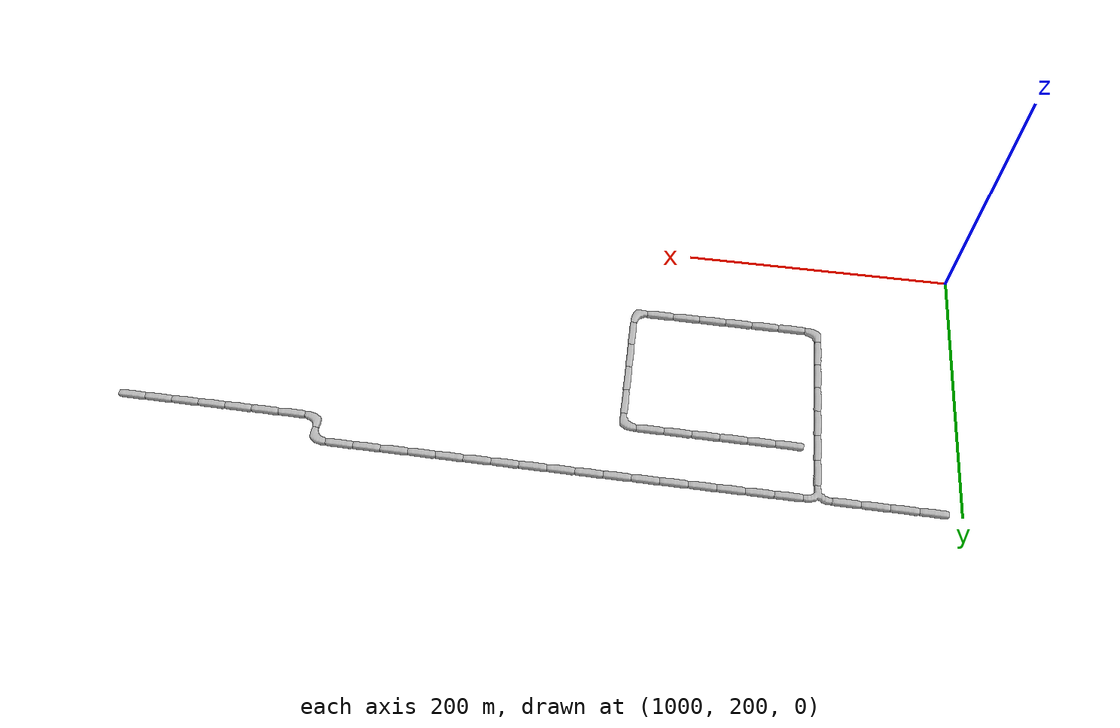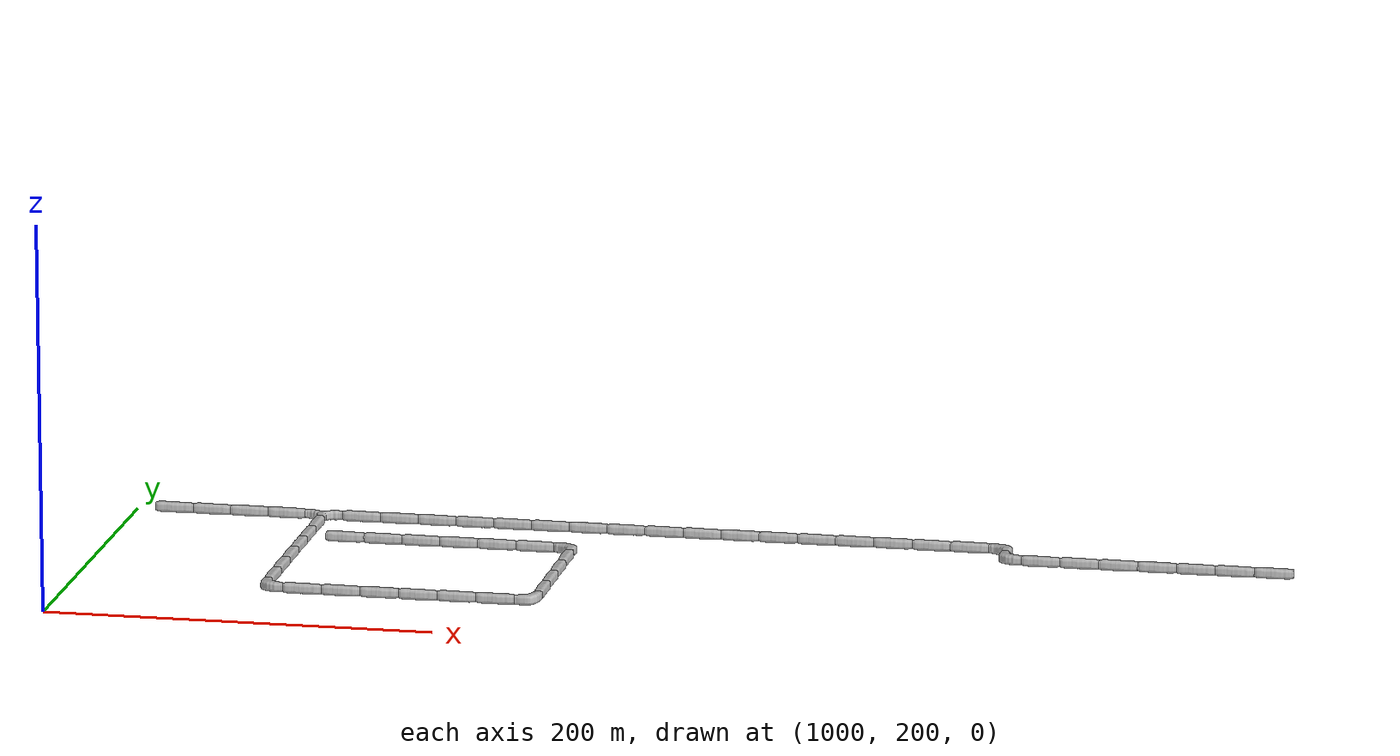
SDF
<sdf version="1.6">
 <world name="cave_32000_32">
  <include>
   <static>true</static>
   <name>cave_80_19</name>
   <pose>1600 380 0 0 0 1.5707963267948966</pose>
   <uri>model://cave_straight_20m</uri>
  </include>
  <include>
   <static>true</static>
   <name>cave_79_19</name>
   <pose>1580 380 0 0 0 1.5707963267948966</pose>
   <uri>model://cave_straight_20m</uri>
  </include>
  <include>
   <static>true</static>
   <name>cave_78_19</name>
   <pose>1560 380 0 0 0 1.5707963267948966</pose>
   <uri>model://cave_straight_20m</uri>
  </include>
  <include>
   <static>true</static>
   <name>cave_77_19</name>
   <pose>1540 380 0 0 0 1.5707963267948966</pose>
   <uri>model://cave_straight_20m</uri>
  </include>
  <include>
   <static>true</static>
   <name>cave_76_19</name>
   <pose>1520 380 0 0 0 1.5707963267948966</pose>
   <uri>model://cave_straight_20m</uri>
  </include>
  <include>
   <static>true</static>
   <name>cave_75_19</name>
   <pose>1500 380 0 0 0 1.5707963267948966</pose>
   <uri>model://cave_straight_20m</uri>
  </include>
  <include>
   <static>true</static>
   <name>cave_74_19</name>
   <pose>1480 380 0 0 0 1.5707963267948966</pose>
   <uri>model://cave_straight_20m</uri>
  </include>
  <include>
   <static>true</static>
   <name>cave_73_19</name>
   <pose>1460 380 0 0 0 0.0</pose>
   <uri>model://cave_L_20m</uri>
  </include>
  <include>
   <static>true</static>
   <name>cave_73_20</name>
   <pose>1460 400 0 0 0 3.141592653589793</pose>
   <uri>model://cave_L_20m</uri>
  </include>
  <include>
   <static>true</static>
   <name>cave_72_20</name>
   <pose>1440 400 0 0 0 1.5707963267948966</pose>
   <uri>model://cave_straight_20m</uri>
  </include>
  <include>
   <static>true</static>
   <name>cave_71_20</name>
   <pose>1420 400 0 0 0 1.5707963267948966</pose>
   <uri>model://cave_straight_20m</uri>
  </include>
  <include>
   <static>true</static>
   <name>cave_70_20</name>
   <pose>1400 400 0 0 0 1.5707963267948966</pose>
   <uri>model://cave_straight_20m</uri>
  </include>
  <include>
   <static>true</static>
   <name>cave_69_20</name>
   <pose>1380 400 0 0 0 1.5707963267948966</pose>
   <uri>model://cave_straight_20m</uri>
  </include>
  <include>
   <static>true</static>
   <name>cave_68_20</name>
   <pose>1360 400 0 0 0 1.5707963267948966</pose>
   <uri>model://cave_straight_20m</uri>
  </include>
  <include>
   <static>true</static>
   <name>cave_67_20</name>
   <pose>1340 400 0 0 0 1.5707963267948966</pose>
   <uri>model://cave_straight_20m</uri>
  </include>
  <include>
   <static>true</static>
   <name>cave_66_20</name>
   <pose>1320 400 0 0 0 1.5707963267948966</pose>
   <uri>model://cave_straight_20m</uri>
  </include>
  <include>
   <static>true</static>
   <name>cave_65_20</name>
   <pose>1300 400 0 0 0 1.5707963267948966</pose>
   <uri>model://cave_straight_20m</uri>
  </include>
  <include>
   <static>true</static>
   <name>cave_64_20</name>
   <pose>1280 400 0 0 0 1.5707963267948966</pose>
   <uri>model://cave_straight_20m</uri>
  </include>
  <include>
   <static>true</static>
   <name>cave_63_20</name>
   <pose>1260 400 0 0 0 1.5707963267948966</pose>
   <uri>model://cave_straight_20m</uri>
  </include>
  <include>
   <static>true</static>
   <name>cave_62_20</name>
   <pose>1240 400 0 0 0 1.5707963267948966</pose>
   <uri>model://cave_straight_20m</uri>
  </include>
  <include>
   <static>true</static>
   <name>cave_61_20</name>
   <pose>1220 400 0 0 0 1.5707963267948966</pose>
   <uri>model://cave_straight_20m</uri>
  </include>
  <include>
   <static>true</static>
   <name>cave_60_20</name>
   <pose>1200 400 0 0 0 1.5707963267948966</pose>
   <uri>model://cave_straight_20m</uri>
  </include>
  <include>
   <static>true</static>
   <name>cave_59_20</name>
   <pose>1180 400 0 0 0 1.5707963267948966</pose>
   <uri>model://cave_straight_20m</uri>
  </include>
  <include>
   <static>true</static>
   <name>cave_58_20</name>
   <pose>1160 400 0 0 0 1.5707963267948966</pose>
   <uri>model://cave_straight_20m</uri>
  </include>
  <include>
   <static>true</static>
   <name>cave_57_20</name>
   <pose>1140 400 0 0 0 1.5707963267948966</pose>
   <uri>model://cave_straight_20m</uri>
  </include>
  <include>
   <static>true</static>
   <name>cave_56_20</name>
   <pose>1120 400 0 0 0 1.5707963267948966</pose>
   <uri>model://cave_straight_20m</uri>
  </include>
  <include>
   <static>true</static>
   <name>cave_55_20</name>
   <pose>1100 400 0 0 0 3.141592653589793</pose>
   <uri>model://cave_3way_20m</uri>
  </include>
  <include>
   <static>true</static>
   <name>cave_55_19</name>
   <pose>1100 380 0 0 0 0.0</pose>
   <uri>model://cave_straight_20m</uri>
  </include>
  <include>
   <static>true</static>
   <name>cave_55_18</name>
   <pose>1100 360 0 0 0 0.0</pose>
   <uri>model://cave_straight_20m</uri>
  </include>
  <include>
   <static>true</static>
   <name>cave_55_17</name>
   <pose>1100 340 0 0 0 0.0</pose>
   <uri>model://cave_straight_20m</uri>
  </include>
  <include>
   <static>true</static>
   <name>cave_55_16</name>
   <pose>1100 320 0 0 0 0.0</pose>
   <uri>model://cave_straight_20m</uri>
  </include>
  <include>
   <static>true</static>
   <name>cave_55_15</name>
   <pose>1100 300 0 0 0 0.0</pose>
   <uri>model://cave_straight_20m</uri>
  </include>
  <include>
   <static>true</static>
   <name>cave_55_14</name>
   <pose>1100 280 0 0 0 0.0</pose>
   <uri>model://cave_straight_20m</uri>
  </include>
  <include>
   <static>true</static>
   <name>cave_55_13</name>
   <pose>1100 260 0 0 0 0.0</pose>
   <uri>model://cave_L_20m</uri>
  </include>
  <include>
   <static>true</static>
   <name>cave_56_13</name>
   <pose>1120 260 0 0 0 1.5707963267948966</pose>
   <uri>model://cave_straight_20m</uri>
  </include>
  <include>
   <static>true</static>
   <name>cave_57_13</name>
   <pose>1140 260 0 0 0 1.5707963267948966</pose>
   <uri>model://cave_straight_20m</uri>
  </include>
  <include>
   <static>true</static>
   <name>cave_58_13</name>
   <pose>1160 260 0 0 0 1.5707963267948966</pose>
   <uri>model://cave_straight_20m</uri>
  </include>
  <include>
   <static>true</static>
   <name>cave_59_13</name>
   <pose>1180 260 0 0 0 1.5707963267948966</pose>
   <uri>model://cave_straight_20m</uri>
  </include>
  <include>
   <static>true</static>
   <name>cave_60_13</name>
   <pose>1200 260 0 0 0 1.5707963267948966</pose>
   <uri>model://cave_straight_20m</uri>
  </include>
  <include>
   <static>true</static>
   <name>cave_61_13</name>
   <pose>1220 260 0 0 0 1.5707963267948966</pose>
   <uri>model://cave_straight_20m</uri>
  </include>
  <include>
   <static>true</static>
   <name>cave_62_13</name>
   <pose>1240 260 0 0 0 1.5707963267948966</pose>
   <uri>model://cave_L_20m</uri>
  </include>
  <include>
   <static>true</static>
   <name>cave_62_14</name>
   <pose>1240 280 0 0 0 0.0</pose>
   <uri>model://cave_straight_20m</uri>
  </include>
  <include>
   <static>true</static>
   <name>cave_62_15</name>
   <pose>1240 300 0 0 0 0.0</pose>
   <uri>model://cave_straight_20m</uri>
  </include>
  <include>
   <static>true</static>
   <name>cave_62_16</name>
   <pose>1240 320 0 0 0 0.0</pose>
   <uri>model://cave_straight_20m</uri>
  </include>
  <include>
   <static>true</static>
   <name>cave_62_17</name>
   <pose>1240 340 0 0 0 0.0</pose>
   <uri>model://cave_straight_20m</uri>
  </include>
  <include>
   <static>true</static>
   <name>cave_62_18</name>
   <pose>1240 360 0 0 0 3.141592653589793</pose>
   <uri>model://cave_L_20m</uri>
  </include>
  <include>
   <static>true</static>
   <name>cave_61_18</name>
   <pose>1220 360 0 0 0 1.5707963267948966</pose>
   <uri>model://cave_straight_20m</uri>
  </include>
  <include>
   <static>true</static>
   <name>cave_60_18</name>
   <pose>1200 360 0 0 0 1.5707963267948966</pose>
   <uri>model://cave_straight_20m</uri>
  </include>
  <include>
   <static>true</static>
   <name>cave_59_18</name>
   <pose>1180 360 0 0 0 1.5707963267948966</pose>
   <uri>model://cave_straight_20m</uri>
  </include>
  <include>
   <static>true</static>
   <name>cave_58_18</name>
   <pose>1160 360 0 0 0 1.5707963267948966</pose>
   <uri>model://cave_straight_20m</uri>
  </include>
  <include>
   <static>true</static>
   <name>cave_57_18</name>
   <pose>1140 360 0 0 0 1.5707963267948966</pose>
   <uri>model://cave_straight_20m</uri>
  </include>
  <include>
   <static>true</static>
   <name>cave_56_18</name>
   <pose>1120 360 0 0 0 1.5707963267948966</pose>
   <uri>model://cave_straight_20m</uri>
  </include>
  <include>
   <static>true</static>
   <name>cave_54_20</name>
   <pose>1080 400 0 0 0 1.5707963267948966</pose>
   <uri>model://cave_straight_20m</uri>
  </include>
  <include>
   <static>true</static>
   <name>cave_53_20</name>
   <pose>1060 400 0 0 0 1.5707963267948966</pose>
   <uri>model://cave_straight_20m</uri>
  </include>
  <include>
   <static>true</static>
   <name>cave_52_20</name>
   <pose>1040 400 0 0 0 1.5707963267948966</pose>
   <uri>model://cave_straight_20m</uri>
  </include>
  <include>
   <static>true</static>
   <name>cave_51_20</name>
   <pose>1020 400 0 0 0 1.5707963267948966</pose>
   <uri>model://cave_straight_20m</uri>
  </include>
 </world>
</sdf>
